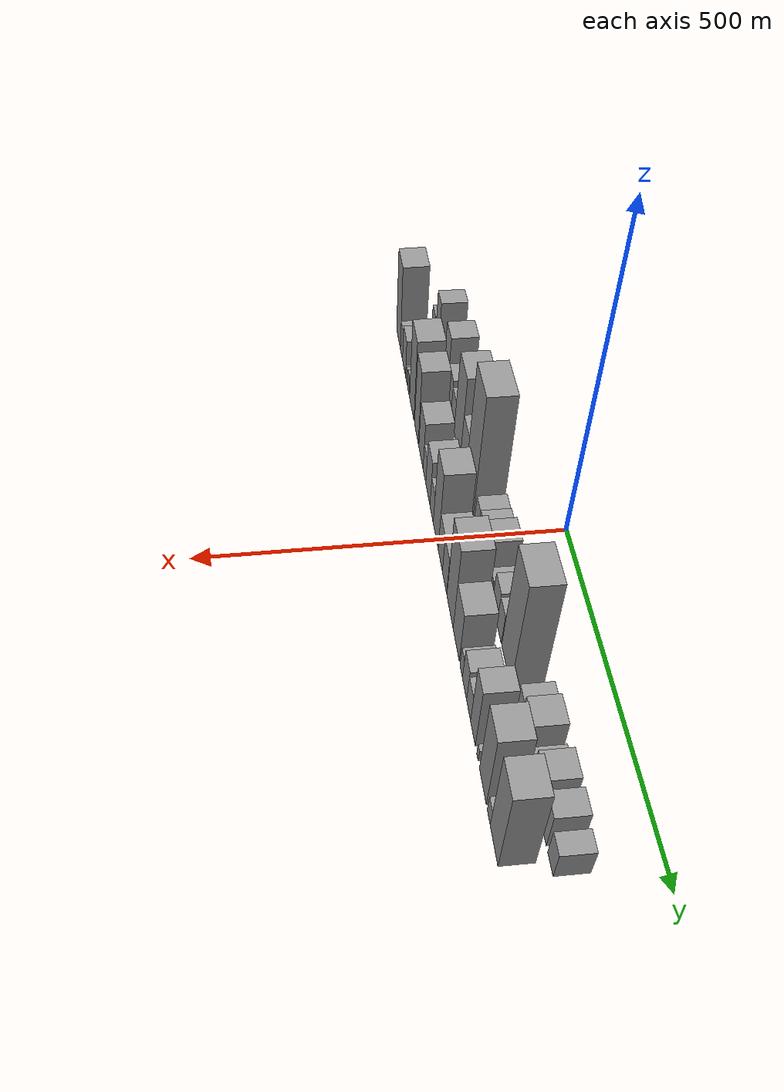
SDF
<sdf version="1.6">
 <world name="default">
  <scene>
   <sky><clouds><speed>12</speed></clouds></sky>
   <ambient>0.4 0.4 0.4 1</ambient>
   <background>0.7 0.7 0.7 1</background>
   <shadows>1</shadows>
  </scene>
  <gravity>0 0 -9.8066</gravity>
  <magnetic_field>6e-06 2.3e-05 -4.2e-05</magnetic_field>
  <physics default="0" name="default_physics" type="ode">
   <ode>
    <solver>
     <type>quick</type>
     <iters>10</iters>
     <sor>1.0</sor>
     <use_dynamic_moi_rescaling>0</use_dynamic_moi_rescaling>
    </solver>
    <constraints>
     <cfm>0</cfm>
     <erp>0.2</erp>
     <contact_max_correcting_vel>100</contact_max_correcting_vel>
     <contact_surface_layer>0.001</contact_surface_layer>
    </constraints>
   </ode>
   <max_step_size>0.004</max_step_size>
   <real_time_factor>1</real_time_factor>
   <real_time_update_rate>250</real_time_update_rate>
  </physics>
  <light name="sun" type="directional">
   <pose>0 0 10 0 0 0</pose>
   <diffuse>0.8 0.8 0.8 1</diffuse>
   <specular>0.2 0.2 0.2 1</specular>
   <attenuation>
    <range>1000</range>
    <constant>0.9</constant>
    <linear>0.01</linear>
    <quadratic>0.001</quadratic>
   </attenuation>
   <direction>-0.5 0.1 -0.9</direction>
  </light>
  <model name="building_1">
   <static>1</static>
   <pose>100.0000 -425.4805 0 0.000000 0.000000 0.000000</pose>
   <link name="link">
    <pose>0 0 25.50 0 0 0</pose>
    <collision name="collision"><geometry><box><size>40.0000 29.0390 51.0000</size></box></geometry></collision>
    <visual name="visual">
     <cast_shadows>0</cast_shadows>
     <geometry><box><size>40.0000 29.0390 51.0000</size></box></geometry>
     <material>
      <script>
       <uri>model://grey_wall/materials/scripts</uri>
       <uri>model://grey_wall/materials/textures</uri>
       <name>vrc/grey_wall</name>
      </script>
     </material>
    </visual>
   </link>
  </model>
  <model name="building_2">
   <static>1</static>
   <pose>100.0000 -385.6273 0 0.000000 0.000000 0.000000</pose>
   <link name="link">
    <pose>0 0 52.50 0 0 0</pose>
    <collision name="collision"><geometry><box><size>40.0000 32.6674 105.0000</size></box></geometry></collision>
    <visual name="visual">
     <cast_shadows>0</cast_shadows>
     <geometry><box><size>40.0000 32.6674 105.0000</size></box></geometry>
     <material>
      <script>
       <uri>model://grey_wall/materials/scripts</uri>
       <uri>model://grey_wall/materials/textures</uri>
       <name>vrc/grey_wall</name>
      </script>
     </material>
    </visual>
   </link>
  </model>
  <model name="building_3">
   <static>1</static>
   <pose>100.0000 -347.8852 0 0.000000 0.000000 0.000000</pose>
   <link name="link">
    <pose>0 0 27.00 0 0 0</pose>
    <collision name="collision"><geometry><box><size>40.0000 30.8169 54.0000</size></box></geometry></collision>
    <visual name="visual">
     <cast_shadows>0</cast_shadows>
     <geometry><box><size>40.0000 30.8169 54.0000</size></box></geometry>
     <material>
      <script>
       <uri>model://grey_wall/materials/scripts</uri>
       <uri>model://grey_wall/materials/textures</uri>
       <name>vrc/grey_wall</name>
      </script>
     </material>
    </visual>
   </link>
  </model>
  <model name="building_4">
   <static>1</static>
   <pose>100.0000 -323.6313 0 0.000000 0.000000 0.000000</pose>
   <link name="link">
    <pose>0 0 15.00 0 0 0</pose>
    <collision name="collision"><geometry><box><size>40.0000 17.6909 30.0000</size></box></geometry></collision>
    <visual name="visual">
     <cast_shadows>0</cast_shadows>
     <geometry><box><size>40.0000 17.6909 30.0000</size></box></geometry>
     <material>
      <script>
       <uri>model://grey_wall/materials/scripts</uri>
       <uri>model://grey_wall/materials/textures</uri>
       <name>vrc/grey_wall</name>
      </script>
     </material>
    </visual>
   </link>
  </model>
  <model name="building_5">
   <static>1</static>
   <pose>100.0000 -294.9379 0 0.000000 0.000000 0.000000</pose>
   <link name="link">
    <pose>0 0 57.00 0 0 0</pose>
    <collision name="collision"><geometry><box><size>40.0000 39.6959 114.0000</size></box></geometry></collision>
    <visual name="visual">
     <cast_shadows>0</cast_shadows>
     <geometry><box><size>40.0000 39.6959 114.0000</size></box></geometry>
     <material>
      <script>
       <uri>model://grey_wall/materials/scripts</uri>
       <uri>model://grey_wall/materials/textures</uri>
       <name>vrc/grey_wall</name>
      </script>
     </material>
    </visual>
   </link>
  </model>
  <model name="building_6">
   <static>1</static>
   <pose>100.0000 -255.7790 0 0.000000 0.000000 0.000000</pose>
   <link name="link">
    <pose>0 0 34.50 0 0 0</pose>
    <collision name="collision"><geometry><box><size>40.0000 38.6219 69.0000</size></box></geometry></collision>
    <visual name="visual">
     <cast_shadows>0</cast_shadows>
     <geometry><box><size>40.0000 38.6219 69.0000</size></box></geometry>
     <material>
      <script>
       <uri>model://grey_wall/materials/scripts</uri>
       <uri>model://grey_wall/materials/textures</uri>
       <name>vrc/grey_wall</name>
      </script>
     </material>
    </visual>
   </link>
  </model>
  <model name="building_7">
   <static>1</static>
   <pose>100.0000 -220.8583 0 0.000000 0.000000 0.000000</pose>
   <link name="link">
    <pose>0 0 28.50 0 0 0</pose>
    <collision name="collision"><geometry><box><size>40.0000 31.2194 57.0000</size></box></geometry></collision>
    <visual name="visual">
     <cast_shadows>0</cast_shadows>
     <geometry><box><size>40.0000 31.2194 57.0000</size></box></geometry>
     <material>
      <script>
       <uri>model://grey_wall/materials/scripts</uri>
       <uri>model://grey_wall/materials/textures</uri>
       <name>vrc/grey_wall</name>
      </script>
     </material>
    </visual>
   </link>
  </model>
  <model name="building_8">
   <static>1</static>
   <pose>100.0000 -176.7382 0 0.000000 0.000000 0.000000</pose>
   <link name="link">
    <pose>0 0 73.50 0 0 0</pose>
    <collision name="collision"><geometry><box><size>40.0000 57.0208 147.0000</size></box></geometry></collision>
    <visual name="visual">
     <cast_shadows>0</cast_shadows>
     <geometry><box><size>40.0000 57.0208 147.0000</size></box></geometry>
     <material>
      <script>
       <uri>model://grey_wall/materials/scripts</uri>
       <uri>model://grey_wall/materials/textures</uri>
       <name>vrc/grey_wall</name>
      </script>
     </material>
    </visual>
   </link>
  </model>
  <model name="building_9">
   <static>1</static>
   <pose>100.0000 -125.8291 0 0.000000 0.000000 0.000000</pose>
   <link name="link">
    <pose>0 0 42.00 0 0 0</pose>
    <collision name="collision"><geometry><box><size>40.0000 44.7974 84.0000</size></box></geometry></collision>
    <visual name="visual">
     <cast_shadows>0</cast_shadows>
     <geometry><box><size>40.0000 44.7974 84.0000</size></box></geometry>
     <material>
      <script>
       <uri>model://grey_wall/materials/scripts</uri>
       <uri>model://grey_wall/materials/textures</uri>
       <name>vrc/grey_wall</name>
      </script>
     </material>
    </visual>
   </link>
  </model>
  <model name="building_10">
   <static>1</static>
   <pose>100.0000 -69.9960 0 0.000000 0.000000 0.000000</pose>
   <link name="link">
    <pose>0 0 106.50 0 0 0</pose>
    <collision name="collision"><geometry><box><size>40.0000 66.8688 213.0000</size></box></geometry></collision>
    <visual name="visual">
     <cast_shadows>0</cast_shadows>
     <geometry><box><size>40.0000 66.8688 213.0000</size></box></geometry>
     <material>
      <script>
       <uri>model://grey_wall/materials/scripts</uri>
       <uri>model://grey_wall/materials/textures</uri>
       <name>vrc/grey_wall</name>
      </script>
     </material>
    </visual>
   </link>
  </model>
  <model name="building_11">
   <static>1</static>
   <pose>100.0000 -13.3771 0 0.000000 0.000000 0.000000</pose>
   <link name="link">
    <pose>0 0 25.50 0 0 0</pose>
    <collision name="collision"><geometry><box><size>40.0000 28.3689 51.0000</size></box></geometry></collision>
    <visual name="visual">
     <cast_shadows>0</cast_shadows>
     <geometry><box><size>40.0000 28.3689 51.0000</size></box></geometry>
     <material>
      <script>
       <uri>model://grey_wall/materials/scripts</uri>
       <uri>model://grey_wall/materials/textures</uri>
       <name>vrc/grey_wall</name>
      </script>
     </material>
    </visual>
   </link>
  </model>
  <model name="building_12">
   <static>1</static>
   <pose>100.0000 15.5692 0 0.000000 0.000000 0.000000</pose>
   <link name="link">
    <pose>0 0 27.00 0 0 0</pose>
    <collision name="collision"><geometry><box><size>40.0000 29.5237 54.0000</size></box></geometry></collision>
    <visual name="visual">
     <cast_shadows>0</cast_shadows>
     <geometry><box><size>40.0000 29.5237 54.0000</size></box></geometry>
     <material>
      <script>
       <uri>model://grey_wall/materials/scripts</uri>
       <uri>model://grey_wall/materials/textures</uri>
       <name>vrc/grey_wall</name>
      </script>
     </material>
    </visual>
   </link>
  </model>
  <model name="building_13">
   <static>1</static>
   <pose>100.0000 49.8093 0 0.000000 0.000000 0.000000</pose>
   <link name="link">
    <pose>0 0 34.50 0 0 0</pose>
    <collision name="collision"><geometry><box><size>40.0000 38.9564 69.0000</size></box></geometry></collision>
    <visual name="visual">
     <cast_shadows>0</cast_shadows>
     <geometry><box><size>40.0000 38.9564 69.0000</size></box></geometry>
     <material>
      <script>
       <uri>model://grey_wall/materials/scripts</uri>
       <uri>model://grey_wall/materials/textures</uri>
       <name>vrc/grey_wall</name>
      </script>
     </material>
    </visual>
   </link>
  </model>
  <model name="building_14">
   <static>1</static>
   <pose>100.0000 72.4970 0 0.000000 0.000000 0.000000</pose>
   <link name="link">
    <pose>0 0 7.50 0 0 0</pose>
    <collision name="collision"><geometry><box><size>40.0000 6.4190 15.0000</size></box></geometry></collision>
    <visual name="visual">
     <cast_shadows>0</cast_shadows>
     <geometry><box><size>40.0000 6.4190 15.0000</size></box></geometry>
     <material>
      <script>
       <uri>model://grey_wall/materials/scripts</uri>
       <uri>model://grey_wall/materials/textures</uri>
       <name>vrc/grey_wall</name>
      </script>
     </material>
    </visual>
   </link>
  </model>
  <model name="building_15">
   <static>1</static>
   <pose>100.0000 92.3893 0 0.000000 0.000000 0.000000</pose>
   <link name="link">
    <pose>0 0 18.00 0 0 0</pose>
    <collision name="collision"><geometry><box><size>40.0000 21.3657 36.0000</size></box></geometry></collision>
    <visual name="visual">
     <cast_shadows>0</cast_shadows>
     <geometry><box><size>40.0000 21.3657 36.0000</size></box></geometry>
     <material>
      <script>
       <uri>model://grey_wall/materials/scripts</uri>
       <uri>model://grey_wall/materials/textures</uri>
       <name>vrc/grey_wall</name>
      </script>
     </material>
    </visual>
   </link>
  </model>
  <model name="building_16">
   <static>1</static>
   <pose>100.0000 126.6159 0 0.000000 0.000000 0.000000</pose>
   <link name="link">
    <pose>0 0 30.00 0 0 0</pose>
    <collision name="collision"><geometry><box><size>40.0000 33.0874 60.0000</size></box></geometry></collision>
    <visual name="visual">
     <cast_shadows>0</cast_shadows>
     <geometry><box><size>40.0000 33.0874 60.0000</size></box></geometry>
     <material>
      <script>
       <uri>model://grey_wall/materials/scripts</uri>
       <uri>model://grey_wall/materials/textures</uri>
       <name>vrc/grey_wall</name>
      </script>
     </material>
    </visual>
   </link>
  </model>
  <model name="building_17">
   <static>1</static>
   <pose>100.0000 157.7660 0 0.000000 0.000000 0.000000</pose>
   <link name="link">
    <pose>0 0 27.00 0 0 0</pose>
    <collision name="collision"><geometry><box><size>40.0000 29.2128 54.0000</size></box></geometry></collision>
    <visual name="visual">
     <cast_shadows>0</cast_shadows>
     <geometry><box><size>40.0000 29.2128 54.0000</size></box></geometry>
     <material>
      <script>
       <uri>model://grey_wall/materials/scripts</uri>
       <uri>model://grey_wall/materials/textures</uri>
       <name>vrc/grey_wall</name>
      </script>
     </material>
    </visual>
   </link>
  </model>
  <model name="building_18">
   <static>1</static>
   <pose>100.0000 205.2900 0 0.000000 0.000000 0.000000</pose>
   <link name="link">
    <pose>0 0 94.50 0 0 0</pose>
    <collision name="collision"><geometry><box><size>40.0000 59.8351 189.0000</size></box></geometry></collision>
    <visual name="visual">
     <cast_shadows>0</cast_shadows>
     <geometry><box><size>40.0000 59.8351 189.0000</size></box></geometry>
     <material>
      <script>
       <uri>model://grey_wall/materials/scripts</uri>
       <uri>model://grey_wall/materials/textures</uri>
       <name>vrc/grey_wall</name>
      </script>
     </material>
    </visual>
   </link>
  </model>
  <model name="building_19">
   <static>1</static>
   <pose>100.0000 248.7032 0 0.000000 0.000000 0.000000</pose>
   <link name="link">
    <pose>0 0 7.50 0 0 0</pose>
    <collision name="collision"><geometry><box><size>40.0000 6.9915 15.0000</size></box></geometry></collision>
    <visual name="visual">
     <cast_shadows>0</cast_shadows>
     <geometry><box><size>40.0000 6.9915 15.0000</size></box></geometry>
     <material>
      <script>
       <uri>model://grey_wall/materials/scripts</uri>
       <uri>model://grey_wall/materials/textures</uri>
       <name>vrc/grey_wall</name>
      </script>
     </material>
    </visual>
   </link>
  </model>
  <model name="building_20">
   <static>1</static>
   <pose>100.0000 255.6167 0 0.000000 0.000000 0.000000</pose>
   <link name="link">
    <pose>0 0 7.50 0 0 0</pose>
    <collision name="collision"><geometry><box><size>40.0000 6.8355 15.0000</size></box></geometry></collision>
    <visual name="visual">
     <cast_shadows>0</cast_shadows>
     <geometry><box><size>40.0000 6.8355 15.0000</size></box></geometry>
     <material>
      <script>
       <uri>model://grey_wall/materials/scripts</uri>
       <uri>model://grey_wall/materials/textures</uri>
       <name>vrc/grey_wall</name>
      </script>
     </material>
    </visual>
   </link>
  </model>
  <model name="building_21">
   <static>1</static>
   <pose>100.0000 278.0232 0 0.000000 0.000000 0.000000</pose>
   <link name="link">
    <pose>0 0 25.50 0 0 0</pose>
    <collision name="collision"><geometry><box><size>40.0000 25.9775 51.0000</size></box></geometry></collision>
    <visual name="visual">
     <cast_shadows>0</cast_shadows>
     <geometry><box><size>40.0000 25.9775 51.0000</size></box></geometry>
     <material>
      <script>
       <uri>model://grey_wall/materials/scripts</uri>
       <uri>model://grey_wall/materials/textures</uri>
       <name>vrc/grey_wall</name>
      </script>
     </material>
    </visual>
   </link>
  </model>
  <model name="building_22">
   <static>1</static>
   <pose>100.0000 310.5618 0 0.000000 0.000000 0.000000</pose>
   <link name="link">
    <pose>0 0 33.00 0 0 0</pose>
    <collision name="collision"><geometry><box><size>40.0000 39.0997 66.0000</size></box></geometry></collision>
    <visual name="visual">
     <cast_shadows>0</cast_shadows>
     <geometry><box><size>40.0000 39.0997 66.0000</size></box></geometry>
     <material>
      <script>
       <uri>model://grey_wall/materials/scripts</uri>
       <uri>model://grey_wall/materials/textures</uri>
       <name>vrc/grey_wall</name>
      </script>
     </material>
    </visual>
   </link>
  </model>
  <model name="building_23">
   <static>1</static>
   <pose>100.0000 346.8097 0 0.000000 0.000000 0.000000</pose>
   <link name="link">
    <pose>0 0 18.00 0 0 0</pose>
    <collision name="collision"><geometry><box><size>40.0000 19.3961 36.0000</size></box></geometry></collision>
    <visual name="visual">
     <cast_shadows>0</cast_shadows>
     <geometry><box><size>40.0000 19.3961 36.0000</size></box></geometry>
     <material>
      <script>
       <uri>model://grey_wall/materials/scripts</uri>
       <uri>model://grey_wall/materials/textures</uri>
       <name>vrc/grey_wall</name>
      </script>
     </material>
    </visual>
   </link>
  </model>
  <model name="building_24">
   <static>1</static>
   <pose>100.0000 374.8500 0 0.000000 0.000000 0.000000</pose>
   <link name="link">
    <pose>0 0 31.50 0 0 0</pose>
    <collision name="collision"><geometry><box><size>40.0000 36.6845 63.0000</size></box></geometry></collision>
    <visual name="visual">
     <cast_shadows>0</cast_shadows>
     <geometry><box><size>40.0000 36.6845 63.0000</size></box></geometry>
     <material>
      <script>
       <uri>model://grey_wall/materials/scripts</uri>
       <uri>model://grey_wall/materials/textures</uri>
       <name>vrc/grey_wall</name>
      </script>
     </material>
    </visual>
   </link>
  </model>
  <model name="building_25">
   <static>1</static>
   <pose>100.0000 396.6404 0 0.000000 0.000000 0.000000</pose>
   <link name="link">
    <pose>0 0 7.50 0 0 0</pose>
    <collision name="collision"><geometry><box><size>40.0000 6.8963 15.0000</size></box></geometry></collision>
    <visual name="visual">
     <cast_shadows>0</cast_shadows>
     <geometry><box><size>40.0000 6.8963 15.0000</size></box></geometry>
     <material>
      <script>
       <uri>model://grey_wall/materials/scripts</uri>
       <uri>model://grey_wall/materials/textures</uri>
       <name>vrc/grey_wall</name>
      </script>
     </material>
    </visual>
   </link>
  </model>
  <model name="building_26">
   <static>1</static>
   <pose>100.0000 419.2302 0 0.000000 0.000000 0.000000</pose>
   <link name="link">
    <pose>0 0 31.50 0 0 0</pose>
    <collision name="collision"><geometry><box><size>40.0000 32.2831 63.0000</size></box></geometry></collision>
    <visual name="visual">
     <cast_shadows>0</cast_shadows>
     <geometry><box><size>40.0000 32.2831 63.0000</size></box></geometry>
     <material>
      <script>
       <uri>model://grey_wall/materials/scripts</uri>
       <uri>model://grey_wall/materials/textures</uri>
       <name>vrc/grey_wall</name>
      </script>
     </material>
    </visual>
   </link>
  </model>
  <model name="building_27">
   <static>1</static>
   <pose>100.0000 455.7268 0 0.000000 0.000000 0.000000</pose>
   <link name="link">
    <pose>0 0 24.00 0 0 0</pose>
    <collision name="collision"><geometry><box><size>40.0000 26.7102 48.0000</size></box></geometry></collision>
    <visual name="visual">
     <cast_shadows>0</cast_shadows>
     <geometry><box><size>40.0000 26.7102 48.0000</size></box></geometry>
     <material>
      <script>
       <uri>model://grey_wall/materials/scripts</uri>
       <uri>model://grey_wall/materials/textures</uri>
       <name>vrc/grey_wall</name>
      </script>
     </material>
    </visual>
   </link>
  </model>
  <model name="building_28">
   <static>1</static>
   <pose>155.0000 -425.1430 0 0.000000 0.000000 0.000000</pose>
   <link name="link">
    <pose>0 0 75.00 0 0 0</pose>
    <collision name="collision"><geometry><box><size>40.0000 49.7140 150.0000</size></box></geometry></collision>
    <visual name="visual">
     <cast_shadows>0</cast_shadows>
     <geometry><box><size>40.0000 49.7140 150.0000</size></box></geometry>
     <material>
      <script>
       <uri>model://grey_wall/materials/scripts</uri>
       <uri>model://grey_wall/materials/textures</uri>
       <name>vrc/grey_wall</name>
      </script>
     </material>
    </visual>
   </link>
  </model>
  <model name="building_29">
   <static>1</static>
   <pose>155.0000 -386.3704 0 0.000000 0.000000 0.000000</pose>
   <link name="link">
    <pose>0 0 27.00 0 0 0</pose>
    <collision name="collision"><geometry><box><size>40.0000 27.8311 54.0000</size></box></geometry></collision>
    <visual name="visual">
     <cast_shadows>0</cast_shadows>
     <geometry><box><size>40.0000 27.8311 54.0000</size></box></geometry>
     <material>
      <script>
       <uri>model://grey_wall/materials/scripts</uri>
       <uri>model://grey_wall/materials/textures</uri>
       <name>vrc/grey_wall</name>
      </script>
     </material>
    </visual>
   </link>
  </model>
  <model name="building_30">
   <static>1</static>
   <pose>155.0000 -353.4885 0 0.000000 0.000000 0.000000</pose>
   <link name="link">
    <pose>0 0 33.00 0 0 0</pose>
    <collision name="collision"><geometry><box><size>40.0000 37.9327 66.0000</size></box></geometry></collision>
    <visual name="visual">
     <cast_shadows>0</cast_shadows>
     <geometry><box><size>40.0000 37.9327 66.0000</size></box></geometry>
     <material>
      <script>
       <uri>model://grey_wall/materials/scripts</uri>
       <uri>model://grey_wall/materials/textures</uri>
       <name>vrc/grey_wall</name>
      </script>
     </material>
    </visual>
   </link>
  </model>
  <model name="building_31">
   <static>1</static>
   <pose>155.0000 -329.6022 0 0.000000 0.000000 0.000000</pose>
   <link name="link">
    <pose>0 0 10.50 0 0 0</pose>
    <collision name="collision"><geometry><box><size>40.0000 9.8398 21.0000</size></box></geometry></collision>
    <visual name="visual">
     <cast_shadows>0</cast_shadows>
     <geometry><box><size>40.0000 9.8398 21.0000</size></box></geometry>
     <material>
      <script>
       <uri>model://grey_wall/materials/scripts</uri>
       <uri>model://grey_wall/materials/textures</uri>
       <name>vrc/grey_wall</name>
      </script>
     </material>
    </visual>
   </link>
  </model>
  <model name="building_32">
   <static>1</static>
   <pose>155.0000 -318.7397 0 0.000000 0.000000 0.000000</pose>
   <link name="link">
    <pose>0 0 13.50 0 0 0</pose>
    <collision name="collision"><geometry><box><size>40.0000 11.8853 27.0000</size></box></geometry></collision>
    <visual name="visual">
     <cast_shadows>0</cast_shadows>
     <geometry><box><size>40.0000 11.8853 27.0000</size></box></geometry>
     <material>
      <script>
       <uri>model://grey_wall/materials/scripts</uri>
       <uri>model://grey_wall/materials/textures</uri>
       <name>vrc/grey_wall</name>
      </script>
     </material>
    </visual>
   </link>
  </model>
  <model name="building_33">
   <static>1</static>
   <pose>155.0000 -301.5388 0 0.000000 0.000000 0.000000</pose>
   <link name="link">
    <pose>0 0 16.50 0 0 0</pose>
    <collision name="collision"><geometry><box><size>40.0000 16.5164 33.0000</size></box></geometry></collision>
    <visual name="visual">
     <cast_shadows>0</cast_shadows>
     <geometry><box><size>40.0000 16.5164 33.0000</size></box></geometry>
     <material>
      <script>
       <uri>model://grey_wall/materials/scripts</uri>
       <uri>model://grey_wall/materials/textures</uri>
       <name>vrc/grey_wall</name>
      </script>
     </material>
    </visual>
   </link>
  </model>
  <model name="building_34">
   <static>1</static>
   <pose>155.0000 -259.9026 0 0.000000 0.000000 0.000000</pose>
   <link name="link">
    <pose>0 0 72.00 0 0 0</pose>
    <collision name="collision"><geometry><box><size>40.0000 50.7561 144.0000</size></box></geometry></collision>
    <visual name="visual">
     <cast_shadows>0</cast_shadows>
     <geometry><box><size>40.0000 50.7561 144.0000</size></box></geometry>
     <material>
      <script>
       <uri>model://grey_wall/materials/scripts</uri>
       <uri>model://grey_wall/materials/textures</uri>
       <name>vrc/grey_wall</name>
      </script>
     </material>
    </visual>
   </link>
  </model>
  <model name="building_35">
   <static>1</static>
   <pose>155.0000 -206.3180 0 0.000000 0.000000 0.000000</pose>
   <link name="link">
    <pose>0 0 66.00 0 0 0</pose>
    <collision name="collision"><geometry><box><size>40.0000 42.4132 132.0000</size></box></geometry></collision>
    <visual name="visual">
     <cast_shadows>0</cast_shadows>
     <geometry><box><size>40.0000 42.4132 132.0000</size></box></geometry>
     <material>
      <script>
       <uri>model://grey_wall/materials/scripts</uri>
       <uri>model://grey_wall/materials/textures</uri>
       <name>vrc/grey_wall</name>
      </script>
     </material>
    </visual>
   </link>
  </model>
  <model name="building_36">
   <static>1</static>
   <pose>155.0000 -156.4446 0 0.000000 0.000000 0.000000</pose>
   <link name="link">
    <pose>0 0 42.00 0 0 0</pose>
    <collision name="collision"><geometry><box><size>40.0000 45.3336 84.0000</size></box></geometry></collision>
    <visual name="visual">
     <cast_shadows>0</cast_shadows>
     <geometry><box><size>40.0000 45.3336 84.0000</size></box></geometry>
     <material>
      <script>
       <uri>model://grey_wall/materials/scripts</uri>
       <uri>model://grey_wall/materials/textures</uri>
       <name>vrc/grey_wall</name>
      </script>
     </material>
    </visual>
   </link>
  </model>
  <model name="building_37">
   <static>1</static>
   <pose>155.0000 -119.5235 0 0.000000 0.000000 0.000000</pose>
   <link name="link">
    <pose>0 0 24.00 0 0 0</pose>
    <collision name="collision"><geometry><box><size>40.0000 28.5086 48.0000</size></box></geometry></collision>
    <visual name="visual">
     <cast_shadows>0</cast_shadows>
     <geometry><box><size>40.0000 28.5086 48.0000</size></box></geometry>
     <material>
      <script>
       <uri>model://grey_wall/materials/scripts</uri>
       <uri>model://grey_wall/materials/textures</uri>
       <name>vrc/grey_wall</name>
      </script>
     </material>
    </visual>
   </link>
  </model>
  <model name="building_38">
   <static>1</static>
   <pose>155.0000 -84.2504 0 0.000000 0.000000 0.000000</pose>
   <link name="link">
    <pose>0 0 40.50 0 0 0</pose>
    <collision name="collision"><geometry><box><size>40.0000 42.0375 81.0000</size></box></geometry></collision>
    <visual name="visual">
     <cast_shadows>0</cast_shadows>
     <geometry><box><size>40.0000 42.0375 81.0000</size></box></geometry>
     <material>
      <script>
       <uri>model://grey_wall/materials/scripts</uri>
       <uri>model://grey_wall/materials/textures</uri>
       <name>vrc/grey_wall</name>
      </script>
     </material>
    </visual>
   </link>
  </model>
  <model name="building_39">
   <static>1</static>
   <pose>155.0000 -47.2165 0 0.000000 0.000000 0.000000</pose>
   <link name="link">
    <pose>0 0 27.00 0 0 0</pose>
    <collision name="collision"><geometry><box><size>40.0000 32.0302 54.0000</size></box></geometry></collision>
    <visual name="visual">
     <cast_shadows>0</cast_shadows>
     <geometry><box><size>40.0000 32.0302 54.0000</size></box></geometry>
     <material>
      <script>
       <uri>model://grey_wall/materials/scripts</uri>
       <uri>model://grey_wall/materials/textures</uri>
       <name>vrc/grey_wall</name>
      </script>
     </material>
    </visual>
   </link>
  </model>
  <model name="building_40">
   <static>1</static>
   <pose>155.0000 -7.9722 0 0.000000 0.000000 0.000000</pose>
   <link name="link">
    <pose>0 0 69.00 0 0 0</pose>
    <collision name="collision"><geometry><box><size>40.0000 46.4584 138.0000</size></box></geometry></collision>
    <visual name="visual">
     <cast_shadows>0</cast_shadows>
     <geometry><box><size>40.0000 46.4584 138.0000</size></box></geometry>
     <material>
      <script>
       <uri>model://grey_wall/materials/scripts</uri>
       <uri>model://grey_wall/materials/textures</uri>
       <name>vrc/grey_wall</name>
      </script>
     </material>
    </visual>
   </link>
  </model>
  <model name="building_41">
   <static>1</static>
   <pose>155.0000 34.3136 0 0.000000 0.000000 0.000000</pose>
   <link name="link">
    <pose>0 0 34.50 0 0 0</pose>
    <collision name="collision"><geometry><box><size>40.0000 38.1132 69.0000</size></box></geometry></collision>
    <visual name="visual">
     <cast_shadows>0</cast_shadows>
     <geometry><box><size>40.0000 38.1132 69.0000</size></box></geometry>
     <material>
      <script>
       <uri>model://grey_wall/materials/scripts</uri>
       <uri>model://grey_wall/materials/textures</uri>
       <name>vrc/grey_wall</name>
      </script>
     </material>
    </visual>
   </link>
  </model>
  <model name="building_42">
   <static>1</static>
   <pose>155.0000 71.6849 0 0.000000 0.000000 0.000000</pose>
   <link name="link">
    <pose>0 0 33.00 0 0 0</pose>
    <collision name="collision"><geometry><box><size>40.0000 36.6293 66.0000</size></box></geometry></collision>
    <visual name="visual">
     <cast_shadows>0</cast_shadows>
     <geometry><box><size>40.0000 36.6293 66.0000</size></box></geometry>
     <material>
      <script>
       <uri>model://grey_wall/materials/scripts</uri>
       <uri>model://grey_wall/materials/textures</uri>
       <name>vrc/grey_wall</name>
      </script>
     </material>
    </visual>
   </link>
  </model>
  <model name="building_43">
   <static>1</static>
   <pose>155.0000 119.0424 0 0.000000 0.000000 0.000000</pose>
   <link name="link">
    <pose>0 0 73.50 0 0 0</pose>
    <collision name="collision"><geometry><box><size>40.0000 52.0858 147.0000</size></box></geometry></collision>
    <visual name="visual">
     <cast_shadows>0</cast_shadows>
     <geometry><box><size>40.0000 52.0858 147.0000</size></box></geometry>
     <material>
      <script>
       <uri>model://grey_wall/materials/scripts</uri>
       <uri>model://grey_wall/materials/textures</uri>
       <name>vrc/grey_wall</name>
      </script>
     </material>
    </visual>
   </link>
  </model>
  <model name="building_44">
   <static>1</static>
   <pose>155.0000 169.1389 0 0.000000 0.000000 0.000000</pose>
   <link name="link">
    <pose>0 0 45.00 0 0 0</pose>
    <collision name="collision"><geometry><box><size>40.0000 48.1072 90.0000</size></box></geometry></collision>
    <visual name="visual">
     <cast_shadows>0</cast_shadows>
     <geometry><box><size>40.0000 48.1072 90.0000</size></box></geometry>
     <material>
      <script>
       <uri>model://grey_wall/materials/scripts</uri>
       <uri>model://grey_wall/materials/textures</uri>
       <name>vrc/grey_wall</name>
      </script>
     </material>
    </visual>
   </link>
  </model>
  <model name="building_45">
   <static>1</static>
   <pose>155.0000 208.3735 0 0.000000 0.000000 0.000000</pose>
   <link name="link">
    <pose>0 0 18.00 0 0 0</pose>
    <collision name="collision"><geometry><box><size>40.0000 18.3621 36.0000</size></box></geometry></collision>
    <visual name="visual">
     <cast_shadows>0</cast_shadows>
     <geometry><box><size>40.0000 18.3621 36.0000</size></box></geometry>
     <material>
      <script>
       <uri>model://grey_wall/materials/scripts</uri>
       <uri>model://grey_wall/materials/textures</uri>
       <name>vrc/grey_wall</name>
      </script>
     </material>
    </visual>
   </link>
  </model>
  <model name="building_46">
   <static>1</static>
   <pose>155.0000 232.9988 0 0.000000 0.000000 0.000000</pose>
   <link name="link">
    <pose>0 0 28.50 0 0 0</pose>
    <collision name="collision"><geometry><box><size>40.0000 30.8885 57.0000</size></box></geometry></collision>
    <visual name="visual">
     <cast_shadows>0</cast_shadows>
     <geometry><box><size>40.0000 30.8885 57.0000</size></box></geometry>
     <material>
      <script>
       <uri>model://grey_wall/materials/scripts</uri>
       <uri>model://grey_wall/materials/textures</uri>
       <name>vrc/grey_wall</name>
      </script>
     </material>
    </visual>
   </link>
  </model>
  <model name="building_47">
   <static>1</static>
   <pose>155.0000 262.6371 0 0.000000 0.000000 0.000000</pose>
   <link name="link">
    <pose>0 0 24.00 0 0 0</pose>
    <collision name="collision"><geometry><box><size>40.0000 28.3881 48.0000</size></box></geometry></collision>
    <visual name="visual">
     <cast_shadows>0</cast_shadows>
     <geometry><box><size>40.0000 28.3881 48.0000</size></box></geometry>
     <material>
      <script>
       <uri>model://grey_wall/materials/scripts</uri>
       <uri>model://grey_wall/materials/textures</uri>
       <name>vrc/grey_wall</name>
      </script>
     </material>
    </visual>
   </link>
  </model>
  <model name="building_48">
   <static>1</static>
   <pose>155.0000 293.1908 0 0.000000 0.000000 0.000000</pose>
   <link name="link">
    <pose>0 0 54.00 0 0 0</pose>
    <collision name="collision"><geometry><box><size>40.0000 32.7194 108.0000</size></box></geometry></collision>
    <visual name="visual">
     <cast_shadows>0</cast_shadows>
     <geometry><box><size>40.0000 32.7194 108.0000</size></box></geometry>
     <material>
      <script>
       <uri>model://grey_wall/materials/scripts</uri>
       <uri>model://grey_wall/materials/textures</uri>
       <name>vrc/grey_wall</name>
      </script>
     </material>
    </visual>
   </link>
  </model>
  <model name="building_49">
   <static>1</static>
   <pose>155.0000 324.1597 0 0.000000 0.000000 0.000000</pose>
   <link name="link">
    <pose>0 0 10.50 0 0 0</pose>
    <collision name="collision"><geometry><box><size>40.0000 9.2184 21.0000</size></box></geometry></collision>
    <visual name="visual">
     <cast_shadows>0</cast_shadows>
     <geometry><box><size>40.0000 9.2184 21.0000</size></box></geometry>
     <material>
      <script>
       <uri>model://grey_wall/materials/scripts</uri>
       <uri>model://grey_wall/materials/textures</uri>
       <name>vrc/grey_wall</name>
      </script>
     </material>
    </visual>
   </link>
  </model>
  <model name="building_50">
   <static>1</static>
   <pose>155.0000 359.9846 0 0.000000 0.000000 0.000000</pose>
   <link name="link">
    <pose>0 0 66.00 0 0 0</pose>
    <collision name="collision"><geometry><box><size>40.0000 44.4313 132.0000</size></box></geometry></collision>
    <visual name="visual">
     <cast_shadows>0</cast_shadows>
     <geometry><box><size>40.0000 44.4313 132.0000</size></box></geometry>
     <material>
      <script>
       <uri>model://grey_wall/materials/scripts</uri>
       <uri>model://grey_wall/materials/textures</uri>
       <name>vrc/grey_wall</name>
      </script>
     </material>
    </visual>
   </link>
  </model>
  <model name="building_51">
   <static>1</static>
   <pose>155.0000 397.1785 0 0.000000 0.000000 0.000000</pose>
   <link name="link">
    <pose>0 0 15.00 0 0 0</pose>
    <collision name="collision"><geometry><box><size>40.0000 17.9567 30.0000</size></box></geometry></collision>
    <visual name="visual">
     <cast_shadows>0</cast_shadows>
     <geometry><box><size>40.0000 17.9567 30.0000</size></box></geometry>
     <material>
      <script>
       <uri>model://grey_wall/materials/scripts</uri>
       <uri>model://grey_wall/materials/textures</uri>
       <name>vrc/grey_wall</name>
      </script>
     </material>
    </visual>
   </link>
  </model>
  <model name="building_52">
   <static>1</static>
   <pose>155.0000 429.4531 0 0.000000 0.000000 0.000000</pose>
   <link name="link">
    <pose>0 0 73.50 0 0 0</pose>
    <collision name="collision"><geometry><box><size>40.0000 46.5926 147.0000</size></box></geometry></collision>
    <visual name="visual">
     <cast_shadows>0</cast_shadows>
     <geometry><box><size>40.0000 46.5926 147.0000</size></box></geometry>
     <material>
      <script>
       <uri>model://grey_wall/materials/scripts</uri>
       <uri>model://grey_wall/materials/textures</uri>
       <name>vrc/grey_wall</name>
      </script>
     </material>
    </visual>
   </link>
  </model>
 </world>
</sdf>
